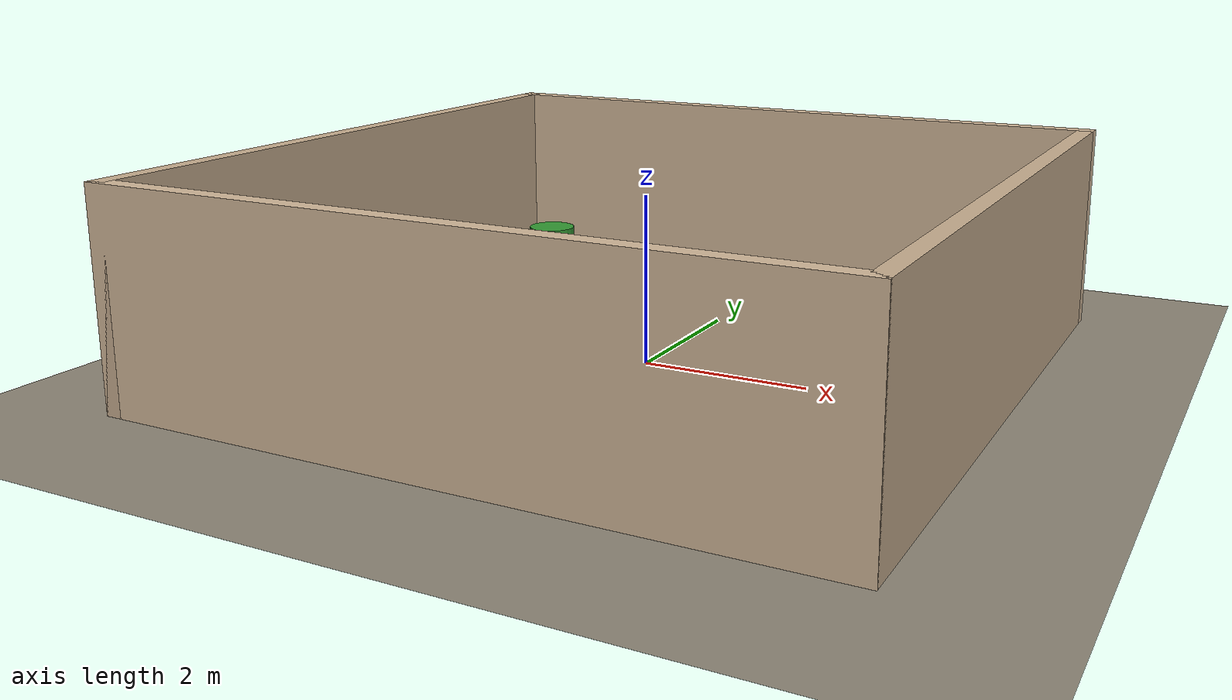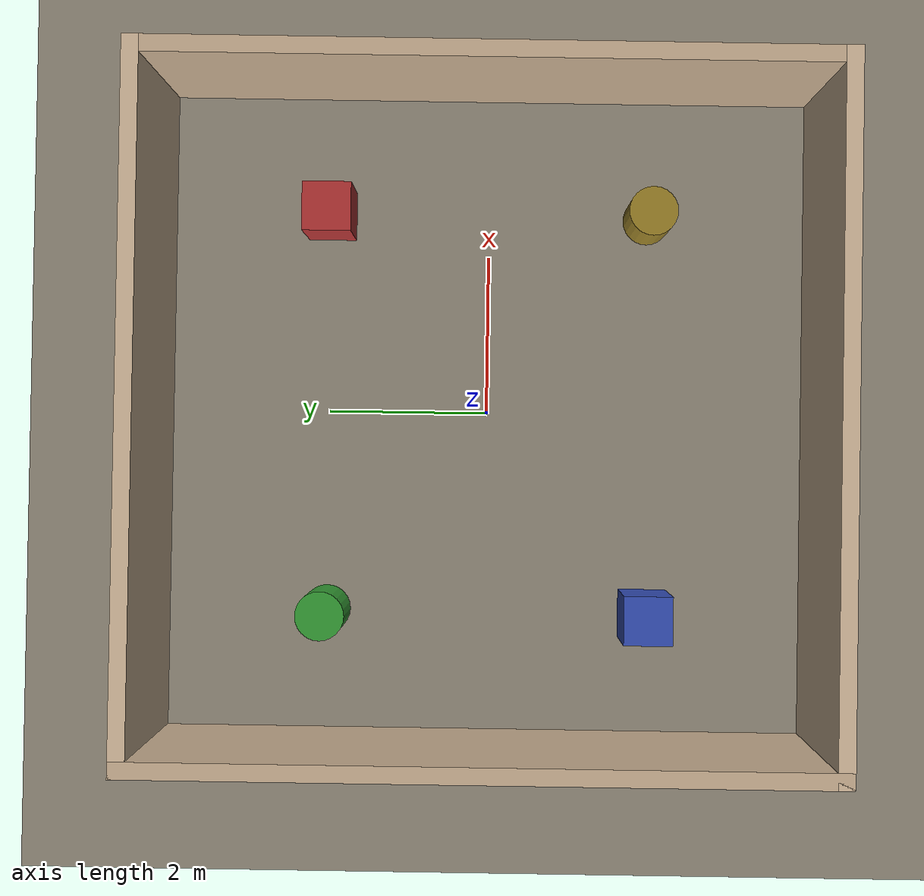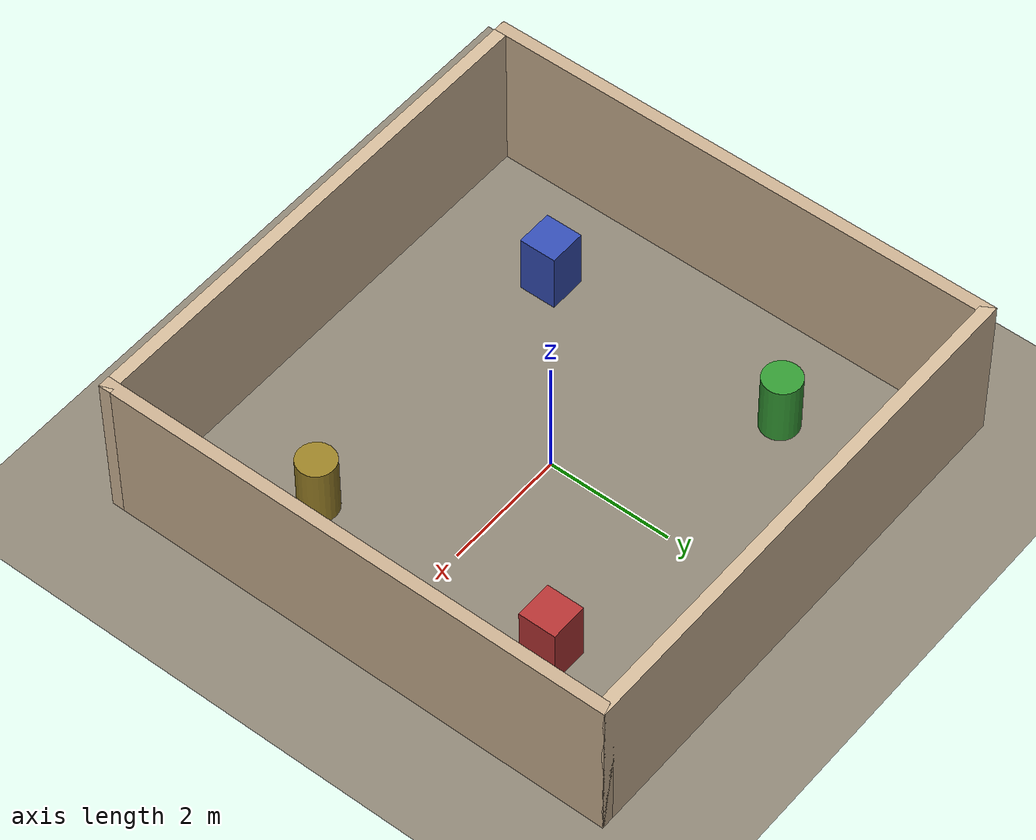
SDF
<?xml version="1.0" ?>
<!--nav2_test_world.sdf-->
<sdf version="1.9">
  <world name="default">

    <!-- Required Ignition Fortress system plugins -->
    <plugin filename="libignition-gazebo-physics-system.so"
            name="ignition::gazebo::systems::Physics"/>
    <plugin filename="libignition-gazebo-user-commands-system.so"
            name="ignition::gazebo::systems::UserCommands"/>
    <plugin filename="libignition-gazebo-scene-broadcaster-system.so"
            name="ignition::gazebo::systems::SceneBroadcaster"/>
    <plugin filename="libignition-gazebo-sensors-system.so"
            name="ignition::gazebo::systems::Sensors">
      <render_engine>ogre2</render_engine>
    </plugin>
    <plugin filename="libignition-gazebo-imu-system.so"
            name="ignition::gazebo::systems::Imu"/>

    <!-- Default user camera position closer to the robot -->
    <gui fullscreen='0'>
      <camera name='user_camera'>
        <pose>1.0 -1.0 0.8 0 0.5 2.35</pose>
        <view_controller>orbit</view_controller>
        <projection_type>perspective</projection_type>
      </camera>
    </gui>

    <!--Physics-->
    <physics name="5ms" type="ignored">
      <max_step_size>0.005</max_step_size>
      <real_time_factor>1.0</real_time_factor>
      <real_time_update_rate>200</real_time_update_rate>
    </physics>

    <!--Scene -->
    <scene>
      <ambient>0.4 0.4 0.4 1</ambient>
      <background>0.2 0.2 0.2 1</background>
      <shadows>true</shadows>
      <grid>false</grid>
    </scene>

    <!--  Lighting -->
    <light name="sun" type="directional">
      <cast_shadows>true</cast_shadows>
      <pose>0 0 10 0 0 0</pose>
      <diffuse>0.9 0.9 0.9 1</diffuse>
      <specular>0.3 0.3 0.3 1</specular>
      <direction>-0.5 0.1 -0.9</direction>
      <attenuation>
        <range>1000</range>
        <constant>0.9</constant>
        <linear>0.01</linear>
        <quadratic>0.001</quadratic>
      </attenuation>
    </light>

    <light name="ambient_fill" type="point">
      <pose>0 0 4 0 0 0</pose>
      <diffuse>0.4 0.4 0.45 1</diffuse>
      <specular>0.0 0.0 0.0 1</specular>
      <attenuation>
        <range>20</range>
        <constant>0.5</constant>
        <linear>0.05</linear>
        <quadratic>0.002</quadratic>
      </attenuation>
      <cast_shadows>false</cast_shadows>
    </light>

    <!-- FLOOR -->
    <model name="floor">
      <static>true</static>
      <pose>0 0 0 0 0 0</pose>
      <link name="link">
        <collision name="collision">
          <geometry>
            <plane><normal>0 0 1</normal><size>100 100</size></plane>
          </geometry>
          <surface>
            <friction><ode><mu>100</mu><mu2>50</mu2></ode></friction>
          </surface>
        </collision>
        <visual name="visual">
          <cast_shadows>false</cast_shadows>
          <geometry>
            <plane><normal>0 0 1</normal><size>100 100</size></plane>
          </geometry>
          <material>
            <ambient>0.4 0.38 0.34 1</ambient>
            <diffuse>0.55 0.52 0.46 1</diffuse>
            <specular>0.02 0.02 0.02 1</specular>
          </material>
        </visual>
      </link>
    </model>

    <!-- North wall -->
    <model name="wall_north">
      <static>true</static>
      <pose>0 4.1 0 0 0 0</pose>
      <link name="link">
        <collision name="collision">
          <geometry><box><size>8.4 0.2 2.5</size></box></geometry>
          <pose>0 0 1.25 0 0 0</pose>
        </collision>
        <visual name="visual">
          <pose>0 0 1.25 0 0 0</pose>
          <geometry><box><size>8.4 0.2 2.5</size></box></geometry>
          <material>
            <ambient>0.72 0.62 0.5 1</ambient>
            <diffuse>0.82 0.72 0.6 1</diffuse>
            <specular>0.05 0.05 0.05 1</specular>
          </material>
        </visual>
      </link>
    </model>

    <!-- South wall -->
    <model name="wall_south">
      <static>true</static>
      <pose>0 -4.1 0 0 0 0</pose>
      <link name="link">
        <collision name="collision">
          <geometry><box><size>8.4 0.2 2.5</size></box></geometry>
          <pose>0 0 1.25 0 0 0</pose>
        </collision>
        <visual name="visual">
          <pose>0 0 1.25 0 0 0</pose>
          <geometry><box><size>8.4 0.2 2.5</size></box></geometry>
          <material>
            <ambient>0.72 0.62 0.5 1</ambient>
            <diffuse>0.82 0.72 0.6 1</diffuse>
            <specular>0.05 0.05 0.05 1</specular>
          </material>
        </visual>
      </link>
    </model>

    <!-- East wall -->
    <model name="wall_east">
      <static>true</static>
      <pose>4.1 0 0 0 0 0</pose>
      <link name="link">
        <collision name="collision">
          <geometry><box><size>0.2 8.4 2.5</size></box></geometry>
          <pose>0 0 1.25 0 0 0</pose>
        </collision>
        <visual name="visual">
          <pose>0 0 1.25 0 0 0</pose>
          <geometry><box><size>0.2 8.4 2.5</size></box></geometry>
          <material>
            <ambient>0.68 0.58 0.46 1</ambient>
            <diffuse>0.78 0.68 0.56 1</diffuse>
            <specular>0.05 0.05 0.05 1</specular>
          </material>
        </visual>
      </link>
    </model>

    <!-- West wall -->
    <model name="wall_west">
      <static>true</static>
      <pose>-4.1 0 0 0 0 0</pose>
      <link name="link">
        <collision name="collision">
          <geometry><box><size>0.2 8.4 2.5</size></box></geometry>
          <pose>0 0 1.25 0 0 0</pose>
        </collision>
        <visual name="visual">
          <pose>0 0 1.25 0 0 0</pose>
          <geometry><box><size>0.2 8.4 2.5</size></box></geometry>
          <material>
            <ambient>0.68 0.58 0.46 1</ambient>
            <diffuse>0.78 0.68 0.56 1</diffuse>
            <specular>0.05 0.05 0.05 1</specular>
          </material>
        </visual>
      </link>
    </model>

    <!-- Box NE quadrant -->
    <model name="box_ne">
      <static>true</static>
      <pose>2.5 2.0 0.5 0 0 0</pose>
      <link name="link">
        <collision name="collision">
          <geometry><box><size>0.6 0.6 1.0</size></box></geometry>
        </collision>
        <visual name="visual">
          <geometry><box><size>0.6 0.6 1.0</size></box></geometry>
          <material>
            <ambient>0.6 0.15 0.15 1</ambient>
            <diffuse>0.7 0.2 0.2 1</diffuse>
            <specular>0.1 0.05 0.05 1</specular>
          </material>
        </visual>
      </link>
    </model>

    <!-- Box SW quadrant -->
    <model name="box_sw">
      <static>true</static>
      <pose>-2.5 -2.0 0.5 0 0 0</pose>
      <link name="link">
        <collision name="collision">
          <geometry><box><size>0.6 0.6 1.0</size></box></geometry>
        </collision>
        <visual name="visual">
          <geometry><box><size>0.6 0.6 1.0</size></box></geometry>
          <material>
            <ambient>0.15 0.2 0.6 1</ambient>
            <diffuse>0.2 0.3 0.7 1</diffuse>
            <specular>0.05 0.05 0.1 1</specular>
          </material>
        </visual>
      </link>
    </model>

    <!-- Cylinder NW quadrant -->
    <model name="cylinder_nw">
      <static>true</static>
      <pose>-2.5 2.0 0.5 0 0 0</pose>
      <link name="link">
        <collision name="collision">
          <geometry><cylinder><radius>0.3</radius><length>1.0</length></cylinder></geometry>
        </collision>
        <visual name="visual">
          <geometry><cylinder><radius>0.3</radius><length>1.0</length></cylinder></geometry>
          <material>
            <ambient>0.15 0.5 0.15 1</ambient>
            <diffuse>0.2 0.6 0.2 1</diffuse>
            <specular>0.05 0.1 0.05 1</specular>
          </material>
        </visual>
      </link>
    </model>

    <!-- Cylinder SE quadrant -->
    <model name="cylinder_se">
      <static>true</static>
      <pose>2.5 -2.0 0.5 0 0 0</pose>
      <link name="link">
        <collision name="collision">
          <geometry><cylinder><radius>0.3</radius><length>1.0</length></cylinder></geometry>
        </collision>
        <visual name="visual">
          <geometry><cylinder><radius>0.3</radius><length>1.0</length></cylinder></geometry>
          <material>
            <ambient>0.5 0.4 0.1 1</ambient>
            <diffuse>0.6 0.5 0.15 1</diffuse>
            <specular>0.1 0.08 0.02 1</specular>
          </material>
        </visual>
      </link>
    </model>

  </world>
</sdf>
